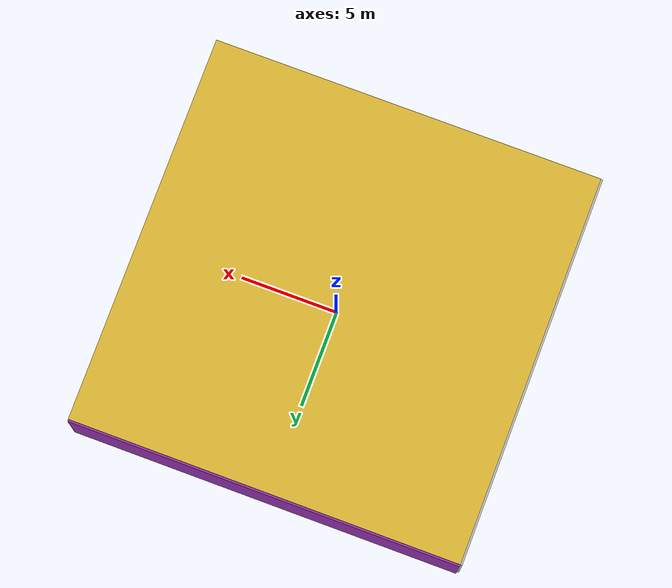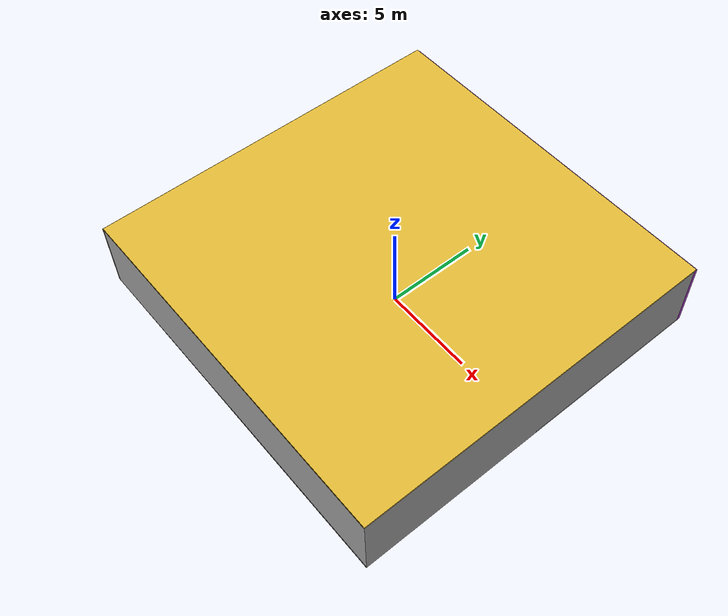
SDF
<sdf version="1.4">
 <world name="default">
  <physics type="ode">
   <max_step_size>0.001</max_step_size>
   <real_time_factor>1</real_time_factor>
   <real_time_update_rate>1000</real_time_update_rate>
   <gravity>0 0 -9.8</gravity>
  </physics>
  <scene><ambient>0.4 0.4 0.4 1</ambient><background>0.7 0.7 0.7 1</background><shadows>1</shadows></scene>
  <model name="Surrounding">
   <static>1</static>
   <link name="Ceiling">
    <collision name="Ceiling_Collision"><geometry><box><size>20 20 0.1</size></box></geometry></collision>
    <visual name="Ceiling_Visual">
     <geometry><box><size>20 20 0.1</size></box></geometry>
     <material>
      <script><uri>file://media/materials/scripts/gazebo.material</uri><name>Gazebo/Gold</name></script>
     </material>
    </visual>
    <pose>0 0 4.05 0 0 0</pose>
   </link>
   <link name="Wall_South">
    <collision name="Wall_South_Collision">
     <geometry><box><size>20 0 4</size></box></geometry>
     <pose>0 0 2 0 -0 0</pose>
    </collision>
    <visual name="Wall_South_Visual">
     <pose>0 0 2 0 -0 0</pose>
     <geometry><box><size>20 0 4</size></box></geometry>
     <material>
      <script><uri>file://media/materials/scripts/gazebo.material</uri><name>Gazebo/WhiteGlow</name></script>
     </material>
    </visual>
    <velocity_decay><linear>0</linear><angular>0</angular></velocity_decay>
    <pose>0 -10 0 0 -0 0</pose>
   </link>
   <link name="Wall_East">
    <collision name="Wall_21_Collision">
     <geometry><box><size>20 0 4</size></box></geometry>
     <pose>0 0 2 0 -0 0</pose>
    </collision>
    <visual name="Wall_21_Visual">
     <pose>0 0 2 0 -0 0</pose>
     <geometry><box><size>20 0 4</size></box></geometry>
     <material>
      <script><uri>file://media/materials/scripts/gazebo.material</uri><name>Gazebo/GreyGradientSky</name></script>
     </material>
    </visual>
    <velocity_decay><linear>0</linear><angular>0</angular></velocity_decay>
    <pose>10 0 0 0 -0 1.5708</pose>
   </link>
   <link name="Wall_North">
    <collision name="Wall_22_Collision">
     <geometry><box><size>20 0.2 4</size></box></geometry>
     <pose>0 0 2 0 -0 0</pose>
    </collision>
    <visual name="Wall_22_Visual">
     <pose>0 0 2 0 -0 0</pose>
     <geometry><box><size>20 0.2 4</size></box></geometry>
     <material>
      <script><uri>file://media/materials/scripts/gazebo.material</uri><name>Gazebo/Purple</name></script>
     </material>
    </visual>
    <velocity_decay><linear>0</linear><angular>0</angular></velocity_decay>
    <pose>0 10 0 0 -0 0</pose>
   </link>
   <link name="Wall_West">
    <collision name="Wall_23_Collision">
     <geometry><box><size>20 0.2 4</size></box></geometry>
     <pose>0 0 2 0 -0 0</pose>
    </collision>
    <visual name="Wall_23_Visual">
     <pose>0 0 2 0 -0 0</pose>
     <geometry><box><size>20 0.2 4</size></box></geometry>
     <material>
      <script><uri>file://media/materials/scripts/gazebo.material</uri><name>Gazebo/LightOn</name></script>
     </material>
    </visual>
    <velocity_decay><linear>0</linear><angular>0</angular></velocity_decay>
    <pose>-10 0 0 0 0 -1.5708</pose>
   </link>
   <link name="Ground_link">
    <collision name="collision">
     <pose>0 0 .05 0 -0 0</pose>
     <geometry><box><size>20 20 0.1</size></box></geometry>
    </collision>
    <visual name="visual">
     <pose>0 0 .05 0 -0 0</pose>
     <geometry><box><size>20 20 0.1</size></box></geometry>
     <material>
      <script><uri>file://media/materials/scripts/gazebo.material</uri><name>Gazebo/GreyGradientSky</name></script>
     </material>
    </visual>
   </link>
   <static>1</static>
  </model>
  <spherical_coordinates>
   <surface_model>EARTH_WGS84</surface_model>
   <latitude_deg>0</latitude_deg>
   <longitude_deg>0</longitude_deg>
   <elevation>0</elevation>
   <heading_deg>0</heading_deg>
  </spherical_coordinates>
  <light name="lightball_0" type="diffuse">
   <diffuse>0.8 0.8 0.8 1</diffuse>
   <specular>0.2 0.2 0.2 1</specular>
   <attenuation>
    <range>100</range>
    <constant>0.7</constant>
    <linear>0.01</linear>
    <quadratic>0.001</quadratic>
   </attenuation>
   <direction>-0.5 0.1 -0.9</direction>
   <pose>3.7176091256 -3.54799273303 1.35013841909 0 0 0</pose>
  </light>
  <light name="lightball_1" type="diffuse">
   <diffuse>0.8 0.8 0.8 1</diffuse>
   <specular>0.2 0.2 0.2 1</specular>
   <attenuation>
    <range>100</range>
    <constant>0.7</constant>
    <linear>0.01</linear>
    <quadratic>0.001</quadratic>
   </attenuation>
   <direction>-0.5 0.1 -0.9</direction>
   <pose>8.64836732837 8.09413354888 1.86621349431 0 0 0</pose>
  </light>
  <light name="lightball_2" type="diffuse">
   <diffuse>0.8 0.8 0.8 1</diffuse>
   <specular>0.2 0.2 0.2 1</specular>
   <attenuation>
    <range>100</range>
    <constant>0.7</constant>
    <linear>0.01</linear>
    <quadratic>0.001</quadratic>
   </attenuation>
   <direction>-0.5 0.1 -0.9</direction>
   <pose>-7.61717858469 1.2882761825 2.95504007756 0 0 0</pose>
  </light>
  <light name="lightball_3" type="diffuse">
   <diffuse>0.8 0.8 0.8 1</diffuse>
   <specular>0.2 0.2 0.2 1</specular>
   <attenuation>
    <range>100</range>
    <constant>0.7</constant>
    <linear>0.01</linear>
    <quadratic>0.001</quadratic>
   </attenuation>
   <direction>-0.5 0.1 -0.9</direction>
   <pose>-8.41608991858 1.53405522331 3.08921113749 0 0 0</pose>
  </light>
  <light name="lightball_4" type="diffuse">
   <diffuse>0.8 0.8 0.8 1</diffuse>
   <specular>0.2 0.2 0.2 1</specular>
   <attenuation>
    <range>100</range>
    <constant>0.7</constant>
    <linear>0.01</linear>
    <quadratic>0.001</quadratic>
   </attenuation>
   <direction>-0.5 0.1 -0.9</direction>
   <pose>4.10885047568 4.54810914078 1.114129736 0 0 0</pose>
  </light>
  <light name="lightball_5" type="diffuse">
   <diffuse>0.8 0.8 0.8 1</diffuse>
   <specular>0.2 0.2 0.2 1</specular>
   <attenuation>
    <range>100</range>
    <constant>0.7</constant>
    <linear>0.01</linear>
    <quadratic>0.001</quadratic>
   </attenuation>
   <direction>-0.5 0.1 -0.9</direction>
   <pose>-8.71583814546 3.78611933966 2.22684907196 0 0 0</pose>
  </light>
  <light name="lightball_6" type="diffuse">
   <diffuse>0.8 0.8 0.8 1</diffuse>
   <specular>0.2 0.2 0.2 1</specular>
   <attenuation>
    <range>100</range>
    <constant>0.7</constant>
    <linear>0.01</linear>
    <quadratic>0.001</quadratic>
   </attenuation>
   <direction>-0.5 0.1 -0.9</direction>
   <pose>2.0348949639 9.08889972671 0.545833882097 0 0 0</pose>
  </light>
  <light name="lightball_7" type="diffuse">
   <diffuse>0.8 0.8 0.8 1</diffuse>
   <specular>0.2 0.2 0.2 1</specular>
   <attenuation>
    <range>100</range>
    <constant>0.7</constant>
    <linear>0.01</linear>
    <quadratic>0.001</quadratic>
   </attenuation>
   <direction>-0.5 0.1 -0.9</direction>
   <pose>-5.44564827254 -8.35462071557 2.87283720503 0 0 0</pose>
  </light>
  <light name="lightball_8" type="diffuse">
   <diffuse>0.8 0.8 0.8 1</diffuse>
   <specular>0.2 0.2 0.2 1</specular>
   <attenuation>
    <range>100</range>
    <constant>0.7</constant>
    <linear>0.01</linear>
    <quadratic>0.001</quadratic>
   </attenuation>
   <direction>-0.5 0.1 -0.9</direction>
   <pose>2.99202276254 0.252934739493 3.0788163693 0 0 0</pose>
  </light>
  <light name="lightball_9" type="diffuse">
   <diffuse>0.8 0.8 0.8 1</diffuse>
   <specular>0.2 0.2 0.2 1</specular>
   <attenuation>
    <range>100</range>
    <constant>0.7</constant>
    <linear>0.01</linear>
    <quadratic>0.001</quadratic>
   </attenuation>
   <direction>-0.5 0.1 -0.9</direction>
   <pose>9.88222324688 -0.0765138897602 3.24504247241 0 0 0</pose>
  </light>
  <light name="lightball_10" type="diffuse">
   <diffuse>0.8 0.8 0.8 1</diffuse>
   <specular>0.2 0.2 0.2 1</specular>
   <attenuation>
    <range>100</range>
    <constant>0.7</constant>
    <linear>0.01</linear>
    <quadratic>0.001</quadratic>
   </attenuation>
   <direction>-0.5 0.1 -0.9</direction>
   <pose>3.80519683918 -9.85078404552 1.86956513857 0 0 0</pose>
  </light>
  <include>
   <uri>model://textured_shapes</uri>
   <pose>-6.85975699243 -7.29612707654 0 0 0 2.36192005434</pose>
  </include>
  <include>
   <uri>model://robocup_3Dsim_goal</uri>
   <pose>-5.21688942415 -1.16277532476 0 0 0 0.888158463425</pose>
  </include>
  <include><uri>model://cabinet</uri><pose>-2.29988855349 2.13322858504 0 0 0 0.0971078023669</pose></include>
  <include>
   <uri>model://textured_shapes</uri>
   <pose>1.76486947065 -4.87920981937 0 0 0 0.482524045462</pose>
  </include>
  <include><uri>model://table</uri><pose>1.5869726532 1.25648584295 0 0 0 1.72023581867</pose></include>
 </world>
</sdf>

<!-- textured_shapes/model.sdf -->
<sdf version="1.6">
  <model name="textured_shapes">
    <pose>0 0 0.5 0 0 0</pose>
    <link name="box">
      <pose>0 -1.5 0 0 0 0</pose>
      <collision name="collision">
        <geometry>
          <box>
            <size>1 1 1</size>
          </box>
        </geometry>
      </collision>
      <visual name="visual">
        <geometry>
          <box>
            <size>1 1 1</size>
          </box>
        </geometry>
        <material>
          <script>
            <uri>model://../model_source/models/textured_shapes/materials/scripts</uri>
            <uri>model://../model_source/models/textured_shapes/materials/textures</uri>
            <name>TexturedShape/Squares</name>
          </script>
        </material>
      </visual>
    </link>
    <link name="sphere">
      <collision name="collision">
        <geometry>
          <sphere>
            <radius>0.5</radius>
          </sphere>
        </geometry>
      </collision>
      <visual name="visual">
        <geometry>
          <sphere>
            <radius>0.5</radius>
          </sphere>
        </geometry>
        <material>
          <script>
            <uri>model://../model_source/models/textured_shapes/materials/scripts</uri>
            <uri>model://../model_source/models/textured_shapes/materials/textures</uri>
            <name>TexturedShape/Squares</name>
          </script>
        </material>
      </visual>
    </link>
    <link name="cylinder">
      <pose>0 1.5 0 0 0 0</pose>
      <collision name="collision">
        <geometry>
          <cylinder>
            <radius>0.5</radius>
            <length>1</length>
          </cylinder>
        </geometry>
      </collision>
      <visual name="visual">
        <geometry>
          <cylinder>
            <radius>0.5</radius>
            <length>1</length>
          </cylinder>
        </geometry>
        <material>
          <script>
            <uri>model://../model_source/models/textured_shapes/materials/scripts</uri>
            <uri>model://../model_source/models/textured_shapes/materials/textures</uri>
            <name>TexturedShape/Squares</name>
          </script>
        </material>
      </visual>
    </link>
  </model>
</sdf>

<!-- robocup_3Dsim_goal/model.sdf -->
<sdf version="1.5">
  <model name="robocup_3d_goal">
    <static>true</static>
    <link name="left_post">
      <pose>0 1.05 0.45 0 0 0</pose>
      <collision name="collision">
        <geometry>
          <cylinder>
            <radius>0.05</radius>
            <length>0.9</length>
          </cylinder>
        </geometry>
      </collision>
      <visual name="visual">
        <geometry>
          <cylinder>
            <radius>0.05</radius>
            <length>0.9</length>
          </cylinder>
        </geometry>
        <material>
          <script>
            <uri>file://media/materials/scripts/gazebo.material</uri>
            <name>Gazebo/ZincYellow</name>
          </script>
        </material>
      </visual>
    </link>
    <link name="left_support_horiz_lower">
      <pose>0.30 1.05 0.01 0 0 0</pose>
      <collision name="collision">
        <geometry>
          <box>
            <size>0.50 0.02 0.02</size>
          </box>
        </geometry>
      </collision>
      <visual name="visual">
        <geometry>
          <box>
            <size>0.50 0.02 0.02</size>
          </box>
        </geometry>
        <material>
          <script>
            <uri>file://media/materials/scripts/gazebo.material</uri>
            <name>Gazebo/White</name>
          </script>
        </material>
      </visual>
    </link>
    <link name="left_support_horiz_upper">
      <pose>0.30 1.05 0.79 0 0 0</pose>
      <collision name="collision">
        <geometry>
          <box>
            <size>0.50 0.02 0.02</size>
          </box>
        </geometry>
      </collision>
      <visual name="visual">
        <geometry>
          <box>
            <size>0.50 0.02 0.02</size>
          </box>
        </geometry>
        <material>
          <script>
            <uri>file://media/materials/scripts/gazebo.material</uri>
            <name>Gazebo/White</name>
          </script>
        </material>
      </visual>
    </link>
    <link name="left_support_vertical">
      <pose>0.56 1.05 0.4 0 1.5708 0</pose>
      <collision name="collision">
        <geometry>
          <box>
            <size>0.80 0.02 0.02</size>
          </box>
        </geometry>
      </collision>
      <visual name="visual">
        <geometry>
          <box>
            <size>0.80 0.02 0.02</size>
          </box>
        </geometry>
        <material>
          <script>
            <uri>file://media/materials/scripts/gazebo.material</uri>
            <name>Gazebo/White</name>
          </script>
        </material>
      </visual>
    </link>
    <link name="right_support_horiz_lower">
      <pose>0.30 -1.05 0.01 0 0 0</pose>
      <collision name="collision">
        <geometry>
          <box>
            <size>0.50 0.02 0.02</size>
          </box>
        </geometry>
      </collision>
      <visual name="visual">
        <geometry>
          <box>
            <size>0.50 0.02 0.02</size>
          </box>
        </geometry>
        <material>
          <script>
            <uri>file://media/materials/scripts/gazebo.material</uri>
            <name>Gazebo/White</name>
          </script>
        </material>
      </visual>
    </link>
    <link name="right_support_horiz_upper">
      <pose>0.30 -1.05 0.79 0 0 0</pose>
      <collision name="collision">
        <geometry>
          <box>
            <size>0.50 0.02 0.02</size>
          </box>
        </geometry>
      </collision>
      <visual name="visual">
        <geometry>
          <box>
            <size>0.50 0.02 0.02</size>
          </box>
        </geometry>
        <material>
          <script>
            <uri>file://media/materials/scripts/gazebo.material</uri>
            <name>Gazebo/White</name>
          </script>
        </material>
      </visual>
    </link>
    <link name="right_support_vertical">
      <pose>0.56 -1.05 0.4 0 1.5708 0</pose>
      <collision name="collision">
        <geometry>
          <box>
            <size>0.80 0.02 0.02</size>
          </box>
        </geometry>
      </collision>
      <visual name="visual">
        <geometry>
          <box>
            <size>0.80 0.02 0.02</size>
          </box>
        </geometry>
        <material>
          <script>
            <uri>file://media/materials/scripts/gazebo.material</uri>
            <name>Gazebo/White</name>
          </script>
        </material>
      </visual>
    </link>
    <link name="center_support_horiz_lower">
      <pose>0.56 0 0.01 0 1.5708 0</pose>
      <collision name="collision">
        <geometry>
          <box>
            <size>0.02 2.08 0.02</size>
          </box>
        </geometry>
      </collision>
      <visual name="visual">
        <geometry>
          <box>
            <size>0.02 2.08 0.02</size>
          </box>
        </geometry>
        <material>
          <script>
            <uri>file://media/materials/scripts/gazebo.material</uri>
            <name>Gazebo/White</name>
          </script>
        </material>
      </visual>
    </link>
    <link name="center_support_horiz_upper">
      <pose>0.56 0 0.79 0 1.5708 0</pose>
      <collision name="collision">
        <geometry>
          <box>
            <size>0.02 2.08 0.02</size>
          </box>
        </geometry>
      </collision>
      <visual name="visual">
        <geometry>
          <box>
            <size>0.02 2.08 0.02</size>
          </box>
        </geometry>
        <material>
          <script>
            <uri>file://media/materials/scripts/gazebo.material</uri>
            <name>Gazebo/White</name>
          </script>
        </material>
      </visual>
    </link>
    <link name="right_post">
      <pose>0 -1.05 0.45 0 0 0</pose>
      <collision name="collision">
        <geometry>
          <cylinder>
            <radius>0.05</radius>
            <length>0.9</length>
          </cylinder>
        </geometry>
      </collision>
      <visual name="visual">
        <geometry>
          <cylinder>
            <radius>0.05</radius>
            <length>0.9</length>
          </cylinder>
        </geometry>
        <material>
          <script>
            <uri>file://media/materials/scripts/gazebo.material</uri>
            <name>Gazebo/ZincYellow</name>
          </script>
        </material>
      </visual>
    </link>
    <link name="crossbar">
      <pose>0 0 0.85 1.57 1.57 0</pose>
      <collision name="collision">
        <geometry>
          <cylinder>
            <radius>0.05</radius>
            <length>2.0</length>
          </cylinder>
        </geometry>
      </collision>
      <visual name="visual">
        <geometry>
          <cylinder>
            <radius>0.05</radius>
            <length>2.0</length>
          </cylinder>
        </geometry>
        <material>
          <script>
            <uri>file://media/materials/scripts/gazebo.material</uri>
            <name>Gazebo/ZincYellow</name>
          </script>
        </material>
      </visual>
    </link>
    <link name="center_net">
      <pose>0.56 0 0.40 0 0 0</pose>
      <collision name="collision">
        <geometry>
          <box>
            <size>0.01 2.1 0.80</size>
          </box>
        </geometry>
      </collision>
      <visual name="visual">
        <geometry>
          <box>
            <size>0.01 2.1 0.80</size>
          </box>
        </geometry>
        <material>
          <script>
            <uri>model://../model_source/models/robocup09_spl_field/materials/scripts/</uri>
            <uri>model://../model_source/models/robocup09_spl_field/materials/textures/</uri>
            <name>RoboCup/Net</name>
          </script>
        </material>
      </visual>
    </link>
    <link name="left_net">
      <pose>0.30 1.05 0.40 0 0 0</pose>
      <collision name="collision">
        <geometry>
          <box>
            <size>0.50 0.01 0.76</size>
          </box>
        </geometry>
      </collision>
      <visual name="visual">
        <geometry>
          <box>
            <size>0.50 0.01 0.76</size>
          </box>
        </geometry>
        <material>
          <script>
            <uri>model://../model_source/models/robocup09_spl_field/materials/scripts/</uri>
            <uri>model://../model_source/models/robocup09_spl_field/materials/textures/</uri>
            <name>RoboCup/Net</name>
          </script>
        </material>
      </visual>
    </link>
    <link name="right_net">
      <pose>0.30 -1.05 0.40 0 0 0</pose>
      <collision name="collision">
        <geometry>
          <box>
            <size>0.50 0.01 0.76</size>
          </box>
        </geometry>
      </collision>
      <visual name="visual">
        <geometry>
          <box>
            <size>0.50 0.01 0.76</size>
          </box>
        </geometry>
        <material>
          <script>
            <uri>model://../model_source/models/robocup09_spl_field/materials/scripts/</uri>
            <uri>model://../model_source/models/robocup09_spl_field/materials/textures/</uri>
            <name>RoboCup/Net</name>
          </script>
        </material>
      </visual>
    </link>
  </model>
</sdf>

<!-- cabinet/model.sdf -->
<sdf version="1.5">
  <model name="cabinet">
    <static>true</static>
    <link name="cabinet_bottom_plate">
      <inertial>
        <pose>0 0 -1 0 0 0</pose>
        <inertia>
          <ixx>2.050000</ixx>
          <ixy>0</ixy>
          <ixz>0</ixz>
          <iyy>2.050000</iyy>
          <iyz>0</iyz>
          <izz>2.050000</izz>
        </inertia>
        <mass>25.000000</mass>
      </inertial>
      <collision name="cabinet_bottom_plate_geom">
        <pose>0 0 0.010000 0 0 0</pose>
        <geometry>
          <box>
            <size>0.450000 0.450000 0.020000</size>
          </box>
        </geometry>
      </collision>
      <visual name="cabinet_bottom_plate_geom_visual">
        <pose>0 0 0.010000 0 0 0</pose>
        <geometry>
          <box>
            <size>0.450000 0.450000 0.020000</size>
          </box>
        </geometry>
        <material>
          <script>
            <uri>model://media/materials/scripts/gazebo.material</uri>
            <name>Gazebo/Wood</name>
          </script>
        </material>
      </visual>
      <collision name="cabinet_bottom_plate_geom_cabinet_back_plate">
        <pose>0.235000 0 0.510000 0 0 0</pose>
        <geometry>
          <box>
            <size>0.020000 0.450000 1.020000</size>
          </box>
        </geometry>
      </collision>
      <visual name="cabinet_bottom_plate_geom_cabinet_back_plate_visual">
        <pose>0.235000 0 0.510000 0 0 0</pose>
        <geometry>
          <box>
            <size>0.020000 0.450000 1.020000</size>
          </box>
        </geometry>
        <material>
          <script>
            <uri>model://media/materials/scripts/gazebo.material</uri>
            <name>Gazebo/Wood</name>
          </script>
        </material>
      </visual>
      <collision name="cabinet_bottom_plate_geom_cabinet_left_plate">
        <pose>0 0.235000 0.510000 0 0 0</pose>
        <geometry>
          <box>
            <size>0.450000 0.020000 1.020000</size>
          </box>
        </geometry>
      </collision>
      <visual name="cabinet_bottom_plate_geom_cabinet_left_plate_visual">
        <pose>0 0.235000 0.510000 0 0 0</pose>
        <geometry>
          <box>
            <size>0.450000 0.020000 1.020000</size>
          </box>
        </geometry>
        <material>
          <script>
            <uri>model://media/materials/scripts/gazebo.material</uri>
            <name>Gazebo/Wood</name>
          </script>
        </material>
      </visual>
      <collision name="cabinet_bottom_plate_geom_cabinet_middle_plate">
        <pose>0 0 0.510000 0 0 0</pose>
        <geometry>
          <box>
            <size>0.450000 0.450000 0.020000</size>
          </box>
        </geometry>
      </collision>
      <visual name="cabinet_bottom_plate_geom_cabinet_middle_plate_visual">
        <pose>0 0 0.510000 0 0 0</pose>
        <geometry>
          <box>
            <size>0.450000 0.450000 0.020000</size>
          </box>
        </geometry>
        <material>
          <script>
            <uri>model://media/materials/scripts/gazebo.material</uri>
            <name>Gazebo/Wood</name>
          </script>
        </material>
      </visual>
      <collision name="cabinet_bottom_plate_geom_cabinet_right_plate">
        <pose>0 -0.235000 0.510000 0 0 0</pose>
        <geometry>
          <box>
            <size>0.450000 0.020000 1.020000</size>
          </box>
        </geometry>
      </collision>
      <visual name="cabinet_bottom_plate_geom_cabinet_right_plate_visual">
        <pose>0 -0.235000 0.510000 0 0 0</pose>
        <geometry>
          <box>
            <size>0.450000 0.020000 1.020000</size>
          </box>
        </geometry>
        <material>
          <script>
            <uri>model://media/materials/scripts/gazebo.material</uri>
            <name>Gazebo/Wood</name>
          </script>
        </material>
      </visual>
      <collision name="cabinet_bottom_plate_geom_cabinet_top_plate">
        <pose>0 0 1.010000 0 0 0</pose>
        <geometry>
          <box>
            <size>0.450000 0.450000 0.020000</size>
          </box>
        </geometry>
      </collision>
      <visual name="cabinet_bottom_plate_geom_cabinet_top_plate_visual">
        <pose>0 0 1.010000 0 0 0</pose>
        <geometry>
          <box>
            <size>0.450000 0.450000 0.020000</size>
          </box>
        </geometry>
        <material>
          <script>
            <uri>model://media/materials/scripts/gazebo.material</uri>
            <name>Gazebo/Wood</name>
          </script>
        </material>
      </visual>
    </link>
  </model>
</sdf>

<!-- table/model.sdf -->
<sdf version="1.5">
  <model name="table">
    <static>true</static>
    <link name="link">
      <collision name="surface">
        <pose>0 0 1.0 0 0 0</pose>
        <geometry>
          <box>
            <size>1.5 0.8 0.03</size>
          </box>
        </geometry>
        <surface>
          <friction>
            <ode>
              <mu>0.6</mu>
              <mu2>0.6</mu2>
            </ode>
          </friction>
        </surface>
      </collision>
      <visual name="visual1">
        <pose>0 0 1.0 0 0 0</pose>
        <geometry>
          <box>
            <size>1.5 0.8 0.03</size>
          </box>
        </geometry>
        <material>
          <script>
            <uri>model://media/materials/scripts/gazebo.material</uri>
            <name>Gazebo/Wood</name>
          </script>
        </material>
      </visual>
      <collision name="front_left_leg">
        <pose>0.68 0.38 0.5 0 0 0</pose>
        <geometry>
          <cylinder>
            <radius>0.02</radius>
            <length>1.0</length>
          </cylinder>
        </geometry>
      </collision>
      <visual name="front_left_leg">
        <pose>0.68 0.38 0.5 0 0 0</pose>
        <geometry>
          <cylinder>
            <radius>0.02</radius>
            <length>1.0</length>
          </cylinder>
        </geometry>
        <material>
          <script>
            <uri>model://media/materials/scripts/gazebo.material</uri>
            <name>Gazebo/Grey</name>
          </script>
        </material>
      </visual>
      <collision name="front_right_leg">
        <pose>0.68 -0.38 0.5 0 0 0</pose>
        <geometry>
          <cylinder>
            <radius>0.02</radius>
            <length>1.0</length>
          </cylinder>
        </geometry>
      </collision>
      <visual name="front_right_leg">
        <pose>0.68 -0.38 0.5 0 0 0</pose>
        <geometry>
          <cylinder>
            <radius>0.02</radius>
            <length>1.0</length>
          </cylinder>
        </geometry>
        <material>
          <script>
            <uri>model://media/materials/scripts/gazebo.material</uri>
            <name>Gazebo/Grey</name>
          </script>
        </material>
      </visual>
      <collision name="back_right_leg">
        <pose>-0.68 -0.38 0.5 0 0 0</pose>
        <geometry>
          <cylinder>
            <radius>0.02</radius>
            <length>1.0</length>
          </cylinder>
        </geometry>
      </collision>
      <visual name="back_right_leg">
        <pose>-0.68 -0.38 0.5 0 0 0</pose>
        <geometry>
          <cylinder>
            <radius>0.02</radius>
            <length>1.0</length>
          </cylinder>
        </geometry>
        <material>
          <script>
            <uri>model://media/materials/scripts/gazebo.material</uri>
            <name>Gazebo/Grey</name>
          </script>
        </material>
      </visual>
      <collision name="back_left_leg">
        <pose>-0.68 0.38 0.5 0 0 0</pose>
        <geometry>
          <cylinder>
            <radius>0.02</radius>
            <length>1.0</length>
          </cylinder>
        </geometry>
      </collision>
      <visual name="back_left_leg">
        <pose>-0.68 0.38 0.5 0 0 0</pose>
        <geometry>
          <cylinder>
            <radius>0.02</radius>
            <length>1.0</length>
          </cylinder>
        </geometry>
        <material>
          <script>
            <uri>model://media/materials/scripts/gazebo.material</uri>
            <name>Gazebo/Grey</name>
          </script>
        </material>
      </visual>
    </link>
  </model>
</sdf>
